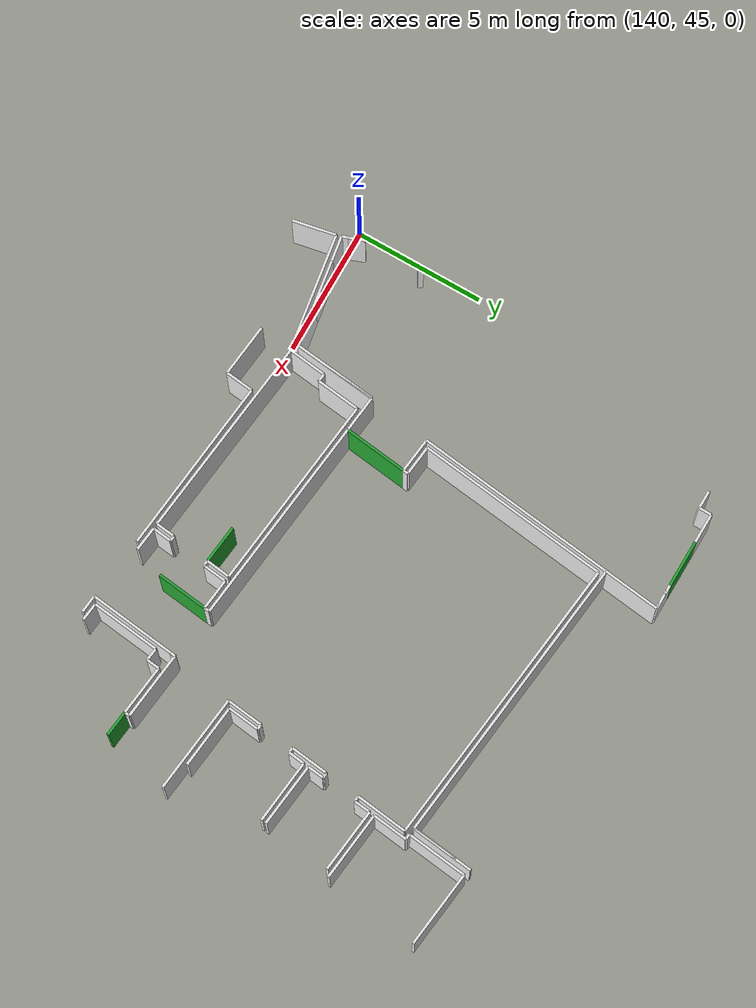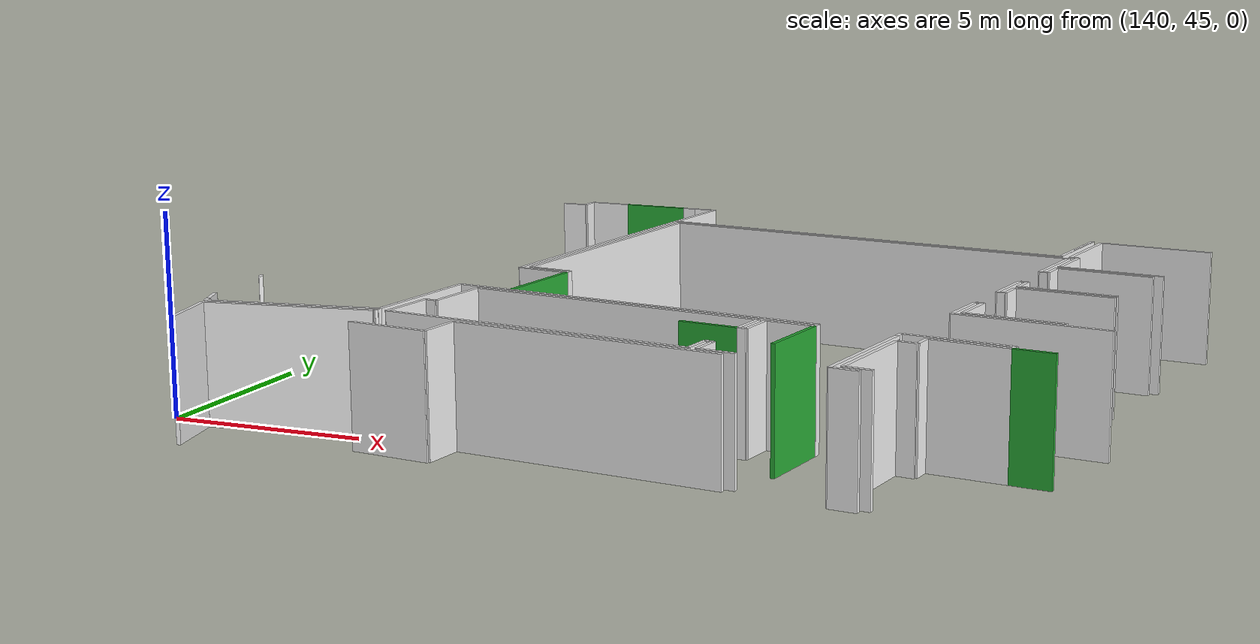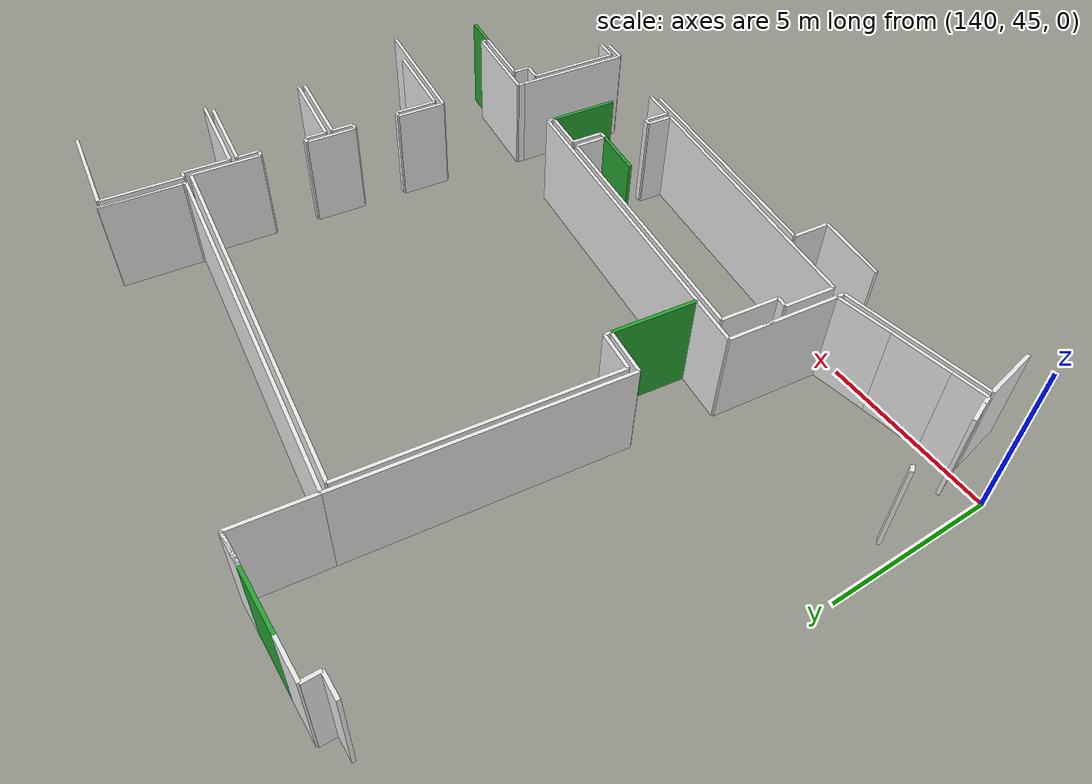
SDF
<sdf version="1.6">
 <world name="default">
  <model name="wall_153.0_46.8_1.5">
   <static>true</static>
   <pose>153.0100000000093 46.76000000000931 1.5 0 0 3.020565433667462</pose>
   <link name="link">
    <visual name="visual">
     <geometry><box><size>1.49090576496478 0.1 3</size></box></geometry>
     <material>
      <script><uri>file://media/materials/scripts/gazebo.material</uri><name>Gazebo/Green</name></script>
     </material>
    </visual>
    <collision name="collision"><geometry><box><size>1.49090576496478 0.1 3</size></box></geometry></collision>
   </link>
  </model>
  <model name="wall_147.3_49.9_1.5">
   <static>true</static>
   <pose>147.29000000000815 49.85000000009313 1.5 0 0 1.4494443262269763</pose>
   <link name="link">
    <visual name="visual">
     <geometry><box><size>2.478225171329218 0.1 3</size></box></geometry>
     <material>
      <script><uri>file://media/materials/scripts/gazebo.material</uri><name>Gazebo/Green</name></script>
     </material>
    </visual>
    <collision name="collision"><geometry><box><size>2.478225171329218 0.1 3</size></box></geometry></collision>
   </link>
  </model>
  <model name="wall_155.1_46.4_1.5">
   <static>true</static>
   <pose>155.14000000013039 46.44500000006519 1.5 0 0 -1.6908196651600471</pose>
   <link name="link">
    <visual name="visual">
     <geometry><box><size>2.0044201153750274 0.1 3</size></box></geometry>
     <material>
      <script><uri>file://media/materials/scripts/gazebo.material</uri><name>Gazebo/Green</name></script>
     </material>
    </visual>
    <collision name="collision"><geometry><box><size>2.0044201153750274 0.1 3</size></box></geometry></collision>
   </link>
  </model>
  <model name="wall_160.4_46.8_1.5">
   <static>true</static>
   <pose>160.3850000000093 46.81999999983236 1.5 0 0 -0.1206236686924795</pose>
   <link name="link">
    <visual name="visual">
     <geometry><box><size>0.9972462083198822 0.1 3</size></box></geometry>
     <material>
      <script><uri>file://media/materials/scripts/gazebo.material</uri><name>Gazebo/Green</name></script>
     </material>
    </visual>
    <collision name="collision"><geometry><box><size>0.9972462083198822 0.1 3</size></box></geometry></collision>
   </link>
  </model>
  <model name="wall_145.4_61.4_1.5">
   <static>true</static>
   <pose>145.44999999998254 61.360000000102445 1.5 0 0 -0.011110653908026076</pose>
   <link name="link">
    <visual name="visual">
     <geometry><box><size>1.8001111076705336 0.1 3</size></box></geometry>
     <material>
      <script><uri>file://media/materials/scripts/gazebo.material</uri><name>Gazebo/Green</name></script>
     </material>
    </visual>
    <collision name="collision"><geometry><box><size>1.8001111076705336 0.1 3</size></box></geometry></collision>
   </link>
  </model>
  <model name="wall_153.8_47.1_1.5">
   <static>true</static>
   <pose>153.80499999999302 47.139999999897555 1.5 0 0 -1.6872877874817485</pose>
   <link name="link">
    <visual name="visual">
     <geometry><box><size>0.9464142855493431 0.1 3</size></box></geometry>
     <material>
      <script><uri>file://media/materials/scripts/gazebo.material</uri><name>Gazebo/White</name></script>
     </material>
    </visual>
    <collision name="collision"><geometry><box><size>0.9464142855493431 0.1 3</size></box></geometry></collision>
   </link>
  </model>
  <model name="wall_153.5_44.8_1.5">
   <static>true</static>
   <pose>153.52499999999418 44.81499999994412 1.5 0 0 -1.6902252528468988</pose>
   <link name="link">
    <visual name="visual">
     <geometry><box><size>0.7553806987239018 0.1 3</size></box></geometry>
     <material>
      <script><uri>file://media/materials/scripts/gazebo.material</uri><name>Gazebo/White</name></script>
     </material>
    </visual>
    <collision name="collision"><geometry><box><size>0.7553806987239018 0.1 3</size></box></geometry></collision>
   </link>
  </model>
  <model name="wall_149.6_44.9_1.5">
   <static>true</static>
   <pose>149.55499999999302 44.91500000003725 1.5 0 0 3.0211592075440525</pose>
   <link name="link">
    <visual name="visual">
     <geometry><box><size>7.907275131168029 0.1 3</size></box></geometry>
     <material>
      <script><uri>file://media/materials/scripts/gazebo.material</uri><name>Gazebo/White</name></script>
     </material>
    </visual>
    <collision name="collision"><geometry><box><size>7.907275131168029 0.1 3</size></box></geometry></collision>
   </link>
  </model>
  <model name="wall_145.7_46.1_1.5">
   <static>true</static>
   <pose>145.72000000000116 46.13000000012107 1.5 0 0 1.449769106988834</pose>
   <link name="link">
    <visual name="visual">
     <geometry><box><size>1.4909057649436974 0.1 3</size></box></geometry>
     <material>
      <script><uri>file://media/materials/scripts/gazebo.material</uri><name>Gazebo/White</name></script>
     </material>
    </visual>
    <collision name="collision"><geometry><box><size>1.4909057649436974 0.1 3</size></box></geometry></collision>
   </link>
  </model>
  <model name="wall_146.0_46.9_1.5">
   <static>true</static>
   <pose>145.95999999999185 46.85000000009313 1.5 0 0 -0.132551532423765</pose>
   <link name="link">
    <visual name="visual">
     <geometry><box><size>0.3026549190018152 0.1 3</size></box></geometry>
     <material>
      <script><uri>file://media/materials/scripts/gazebo.material</uri><name>Gazebo/White</name></script>
     </material>
    </visual>
    <collision name="collision"><geometry><box><size>0.3026549190018152 0.1 3</size></box></geometry></collision>
   </link>
  </model>
  <model name="wall_146.2_47.7_1.5">
   <static>true</static>
   <pose>146.20999999999185 47.675000000046566 1.5 0 0 1.4530010049136584</pose>
   <link name="link">
    <visual name="visual">
     <geometry><box><size>1.7017931718677757 0.1 3</size></box></geometry>
     <material>
      <script><uri>file://media/materials/scripts/gazebo.material</uri><name>Gazebo/White</name></script>
     </material>
    </visual>
    <collision name="collision"><geometry><box><size>1.7017931718677757 0.1 3</size></box></geometry></collision>
   </link>
  </model>
  <model name="wall_150.1_48.1_1.5">
   <static>true</static>
   <pose>150.08499999999185 48.06499999994412 1.5 0 0 -0.11995117374483057</pose>
   <link name="link">
    <visual name="visual">
     <geometry><box><size>7.604643318400634 0.1 3</size></box></geometry>
     <material>
      <script><uri>file://media/materials/scripts/gazebo.material</uri><name>Gazebo/White</name></script>
     </material>
    </visual>
    <collision name="collision"><geometry><box><size>7.604643318400634 0.1 3</size></box></geometry></collision>
   </link>
  </model>
  <model name="wall_159.9_47.0_1.5">
   <static>true</static>
   <pose>159.89999999999418 46.97999999998137 1.5 0 0 1.4711276745918913</pose>
   <link name="link">
    <visual name="visual">
     <geometry><box><size>0.20099751260381943 0.1 3</size></box></geometry>
     <material>
      <script><uri>file://media/materials/scripts/gazebo.material</uri><name>Gazebo/White</name></script>
     </material>
    </visual>
    <collision name="collision"><geometry><box><size>0.20099751260381943 0.1 3</size></box></geometry></collision>
   </link>
  </model>
  <model name="wall_158.6_47.2_1.5">
   <static>true</static>
   <pose>158.5899999999965 47.23999999999069 1.5 0 0 3.020968985070269</pose>
   <link name="link">
    <visual name="visual">
     <geometry><box><size>2.659323222111057 0.1 3</size></box></geometry>
     <material>
      <script><uri>file://media/materials/scripts/gazebo.material</uri><name>Gazebo/White</name></script>
     </material>
    </visual>
    <collision name="collision"><geometry><box><size>2.659323222111057 0.1 3</size></box></geometry></collision>
   </link>
  </model>
  <model name="wall_157.3_47.3_1.5">
   <static>true</static>
   <pose>157.2600000000093 47.300000000046566 1.5 0 0 -1.670464979516584</pose>
   <link name="link">
    <visual name="visual">
     <geometry><box><size>0.20099751214626105 0.1 3</size></box></geometry>
     <material>
      <script><uri>file://media/materials/scripts/gazebo.material</uri><name>Gazebo/White</name></script>
     </material>
    </visual>
    <collision name="collision"><geometry><box><size>0.20099751214626105 0.1 3</size></box></geometry></collision>
   </link>
  </model>
  <model name="wall_155.3_47.5_1.5">
   <static>true</static>
   <pose>155.27000000001863 47.54000000003725 1.5 0 0 1.4711276743037347</pose>
   <link name="link">
    <visual name="visual">
     <geometry><box><size>0.20099751260961132 0.1 3</size></box></geometry>
     <material>
      <script><uri>file://media/materials/scripts/gazebo.material</uri><name>Gazebo/White</name></script>
     </material>
    </visual>
    <collision name="collision"><geometry><box><size>0.20099751260961132 0.1 3</size></box></geometry></collision>
   </link>
  </model>
  <model name="wall_151.2_48.1_1.5">
   <static>true</static>
   <pose>151.21000000002095 48.13000000012107 1.5 0 0 3.021776205795211</pose>
   <link name="link">
    <visual name="visual">
     <geometry><box><size>8.198780397119496 0.1 3</size></box></geometry>
     <material>
      <script><uri>file://media/materials/scripts/gazebo.material</uri><name>Gazebo/White</name></script>
     </material>
    </visual>
    <collision name="collision"><geometry><box><size>8.198780397119496 0.1 3</size></box></geometry></collision>
   </link>
  </model>
  <model name="wall_147.5_51.2_1.5">
   <static>true</static>
   <pose>147.45000000001164 51.175000000046566 1.5 0 0 1.4659193879370842</pose>
   <link name="link">
    <visual name="visual">
     <geometry><box><size>0.19104973169180559 0.1 3</size></box></geometry>
     <material>
      <script><uri>file://media/materials/scripts/gazebo.material</uri><name>Gazebo/White</name></script>
     </material>
    </visual>
    <collision name="collision"><geometry><box><size>0.19104973169180559 0.1 3</size></box></geometry></collision>
   </link>
  </model>
  <model name="wall_146.9_51.3_1.5">
   <static>true</static>
   <pose>146.88000000000466 51.34000000008382 1.5 0 0 3.0214839179154356</pose>
   <link name="link">
    <visual name="visual">
     <geometry><box><size>1.1684177335662667 0.1 3</size></box></geometry>
     <material>
      <script><uri>file://media/materials/scripts/gazebo.material</uri><name>Gazebo/White</name></script>
     </material>
    </visual>
    <collision name="collision"><geometry><box><size>1.1684177335662667 0.1 3</size></box></geometry></collision>
   </link>
  </model>
  <model name="wall_146.8_55.2_1.5">
   <static>true</static>
   <pose>146.75500000000466 55.16500000003725 1.5 0 0 1.4502124243818328</pose>
   <link name="link">
    <visual name="visual">
     <geometry><box><size>7.564932253279079 0.1 3</size></box></geometry>
     <material>
      <script><uri>file://media/materials/scripts/gazebo.material</uri><name>Gazebo/White</name></script>
     </material>
    </visual>
    <collision name="collision"><geometry><box><size>7.564932253279079 0.1 3</size></box></geometry></collision>
   </link>
  </model>
  <model name="wall_152.9_58.2_1.5">
   <static>true</static>
   <pose>152.92500000001746 58.22999999998137 1.5 0 0 -0.12015333859032509</pose>
   <link name="link">
    <visual name="visual">
     <geometry><box><size>11.513005689199145 0.1 3</size></box></geometry>
     <material>
      <script><uri>file://media/materials/scripts/gazebo.material</uri><name>Gazebo/White</name></script>
     </material>
    </visual>
    <collision name="collision"><geometry><box><size>11.513005689199145 0.1 3</size></box></geometry></collision>
   </link>
  </model>
  <model name="wall_158.5_56.5_1.5">
   <static>true</static>
   <pose>158.51500000001397 56.53000000002794 1.5 0 0 -1.6939325529007196</pose>
   <link name="link">
    <visual name="visual">
     <geometry><box><size>2.0354115063237828 0.1 3</size></box></geometry>
     <material>
      <script><uri>file://media/materials/scripts/gazebo.material</uri><name>Gazebo/White</name></script>
     </material>
    </visual>
    <collision name="collision"><geometry><box><size>2.0354115063237828 0.1 3</size></box></geometry></collision>
   </link>
  </model>
  <model name="wall_158.5_55.5_1.5">
   <static>true</static>
   <pose>158.49499999999534 55.50500000012107 1.5 0 0 -0.14189705367284136</pose>
   <link name="link">
    <visual name="visual">
     <geometry><box><size>0.2121320342901098 0.1 3</size></box></geometry>
     <material>
      <script><uri>file://media/materials/scripts/gazebo.material</uri><name>Gazebo/White</name></script>
     </material>
    </visual>
    <collision name="collision"><geometry><box><size>0.2121320342901098 0.1 3</size></box></geometry></collision>
   </link>
  </model>
  <model name="wall_158.3_54.1_1.5">
   <static>true</static>
   <pose>158.3299999999872 54.11999999987893 1.5 0 0 3.0419240010121844</pose>
   <link name="link">
    <visual name="visual">
     <geometry><box><size>0.20099751243585498 0.1 3</size></box></geometry>
     <material>
      <script><uri>file://media/materials/scripts/gazebo.material</uri><name>Gazebo/White</name></script>
     </material>
    </visual>
    <collision name="collision"><geometry><box><size>0.20099751243585498 0.1 3</size></box></geometry></collision>
   </link>
  </model>
  <model name="wall_158.1_53.4_1.5">
   <static>true</static>
   <pose>158.13999999998487 53.389999999897555 1.5 0 0 -1.6918235466009592</pose>
   <link name="link">
    <visual name="visual">
     <geometry><box><size>1.4909057649436974 0.1 3</size></box></geometry>
     <material>
      <script><uri>file://media/materials/scripts/gazebo.material</uri><name>Gazebo/White</name></script>
     </material>
    </visual>
    <collision name="collision"><geometry><box><size>1.4909057649436974 0.1 3</size></box></geometry></collision>
   </link>
  </model>
  <model name="wall_158.1_52.6_1.5">
   <static>true</static>
   <pose>158.14999999999418 52.639999999897555 1.5 0 0 -0.09966865257760905</pose>
   <link name="link">
    <visual name="visual">
     <geometry><box><size>0.20099751243585498 0.1 3</size></box></geometry>
     <material>
      <script><uri>file://media/materials/scripts/gazebo.material</uri><name>Gazebo/White</name></script>
     </material>
    </visual>
    <collision name="collision"><geometry><box><size>0.20099751243585498 0.1 3</size></box></geometry></collision>
   </link>
  </model>
  <model name="wall_158.0_51.3_1.5">
   <static>true</static>
   <pose>157.98500000001513 51.26000000000931 1.5 0 0 3.0367157147638757</pose>
   <link name="link">
    <visual name="visual">
     <geometry><box><size>0.19104973174969345 0.1 3</size></box></geometry>
     <material>
      <script><uri>file://media/materials/scripts/gazebo.material</uri><name>Gazebo/White</name></script>
     </material>
    </visual>
    <collision name="collision"><geometry><box><size>0.19104973174969345 0.1 3</size></box></geometry></collision>
   </link>
  </model>
  <model name="wall_157.8_50.6_1.5">
   <static>true</static>
   <pose>157.80000000001746 50.55499999993481 1.5 0 0 -1.6960119063078065</pose>
   <link name="link">
    <visual name="visual">
     <geometry><box><size>1.4412841498042397 0.1 3</size></box></geometry>
     <material>
      <script><uri>file://media/materials/scripts/gazebo.material</uri><name>Gazebo/White</name></script>
     </material>
    </visual>
    <collision name="collision"><geometry><box><size>1.4412841498042397 0.1 3</size></box></geometry></collision>
   </link>
  </model>
  <model name="wall_159.6_49.6_1.5">
   <static>true</static>
   <pose>159.62000000002445 49.609999999869615 1.5 0 0 -0.11984180790081929</pose>
   <link name="link">
    <visual name="visual">
     <geometry><box><size>3.8475966524597003 0.1 3</size></box></geometry>
     <material>
      <script><uri>file://media/materials/scripts/gazebo.material</uri><name>Gazebo/White</name></script>
     </material>
    </visual>
    <collision name="collision"><geometry><box><size>3.8475966524597003 0.1 3</size></box></geometry></collision>
   </link>
  </model>
  <model name="wall_158.0_50.6_1.5">
   <static>true</static>
   <pose>158.00500000000466 50.62999999988824 1.5 0 0 -1.6911791475924711</pose>
   <link name="link">
    <visual name="visual">
     <geometry><box><size>1.2490396313013081 0.1 3</size></box></geometry>
     <material>
      <script><uri>file://media/materials/scripts/gazebo.material</uri><name>Gazebo/White</name></script>
     </material>
    </visual>
    <collision name="collision"><geometry><box><size>1.2490396313013081 0.1 3</size></box></geometry></collision>
   </link>
  </model>
  <model name="wall_159.2_49.9_1.5">
   <static>true</static>
   <pose>159.1699999999837 49.86499999999069 1.5 0 0 -0.11640682593514659</pose>
   <link name="link">
    <visual name="visual">
     <geometry><box><size>2.4968980755447623 0.1 3</size></box></geometry>
     <material>
      <script><uri>file://media/materials/scripts/gazebo.material</uri><name>Gazebo/White</name></script>
     </material>
    </visual>
    <collision name="collision"><geometry><box><size>2.4968980755447623 0.1 3</size></box></geometry></collision>
   </link>
  </model>
  <model name="wall_159.6_53.1_1.5">
   <static>true</static>
   <pose>159.57000000000698 53.125 1.5 0 0 3.025185827469413</pose>
   <link name="link">
    <visual name="visual">
     <geometry><box><size>2.4968980755988457 0.1 3</size></box></geometry>
     <material>
      <script><uri>file://media/materials/scripts/gazebo.material</uri><name>Gazebo/White</name></script>
     </material>
    </visual>
    <collision name="collision"><geometry><box><size>2.4968980755988457 0.1 3</size></box></geometry></collision>
   </link>
  </model>
  <model name="wall_158.3_52.9_1.5">
   <static>true</static>
   <pose>158.29000000000815 52.949999999953434 1.5 0 0 -1.695151321341658</pose>
   <link name="link">
    <visual name="visual">
     <geometry><box><size>0.6449806199952839 0.1 3</size></box></geometry>
     <material>
      <script><uri>file://media/materials/scripts/gazebo.material</uri><name>Gazebo/White</name></script>
     </material>
    </visual>
    <collision name="collision"><geometry><box><size>0.6449806199952839 0.1 3</size></box></geometry></collision>
   </link>
  </model>
  <model name="wall_158.8_57.0_1.5">
   <static>true</static>
   <pose>158.7850000000035 57.03000000002794 1.5 0 0 1.4482254517181363</pose>
   <link name="link">
    <visual name="visual">
     <geometry><box><size>1.390431588022665 0.1 3</size></box></geometry>
     <material>
      <script><uri>file://media/materials/scripts/gazebo.material</uri><name>Gazebo/White</name></script>
     </material>
    </visual>
    <collision name="collision"><geometry><box><size>1.390431588022665 0.1 3</size></box></geometry></collision>
   </link>
  </model>
  <model name="wall_158.8_57.7_1.5">
   <static>true</static>
   <pose>158.76499999998487 57.730000000214204 1.5 0 0 3.0466409471685547</pose>
   <link name="link">
    <visual name="visual">
     <geometry><box><size>0.21095023111991618 0.1 3</size></box></geometry>
     <material>
      <script><uri>file://media/materials/scripts/gazebo.material</uri><name>Gazebo/White</name></script>
     </material>
    </visual>
    <collision name="collision"><geometry><box><size>0.21095023111991618 0.1 3</size></box></geometry></collision>
   </link>
  </model>
  <model name="wall_158.8_58.9_1.5">
   <static>true</static>
   <pose>158.80499999999302 58.93000000016764 1.5 0 0 1.4495453057038894</pose>
   <link name="link">
    <visual name="visual">
     <geometry><box><size>2.3976029695280316 0.1 3</size></box></geometry>
     <material>
      <script><uri>file://media/materials/scripts/gazebo.material</uri><name>Gazebo/White</name></script>
     </material>
    </visual>
    <collision name="collision"><geometry><box><size>2.3976029695280316 0.1 3</size></box></geometry></collision>
   </link>
  </model>
  <model name="wall_160.4_59.9_1.5">
   <static>true</static>
   <pose>160.44000000000233 59.93999999994412 1.5 0 0 -0.12022278677294355</pose>
   <link name="link">
    <visual name="visual">
     <geometry><box><size>3.0016662039824453 0.1 3</size></box></geometry>
     <material>
      <script><uri>file://media/materials/scripts/gazebo.material</uri><name>Gazebo/White</name></script>
     </material>
    </visual>
    <collision name="collision"><geometry><box><size>3.0016662039824453 0.1 3</size></box></geometry></collision>
   </link>
  </model>
  <model name="wall_160.0_56.2_1.5">
   <static>true</static>
   <pose>160.04000000000815 56.17999999993481 1.5 0 0 3.0227523090833937</pose>
   <link name="link">
    <visual name="visual">
     <geometry><box><size>2.6990368652271632 0.1 3</size></box></geometry>
     <material>
      <script><uri>file://media/materials/scripts/gazebo.material</uri><name>Gazebo/White</name></script>
     </material>
    </visual>
    <collision name="collision"><geometry><box><size>2.6990368652271632 0.1 3</size></box></geometry></collision>
   </link>
  </model>
  <model name="wall_157.4_44.0_1.5">
   <static>true</static>
   <pose>157.41500000000815 43.96499999985099 1.5 0 0 3.01189011664666</pose>
   <link name="link">
    <visual name="visual">
     <geometry><box><size>0.6958448102676278 0.1 3</size></box></geometry>
     <material>
      <script><uri>file://media/materials/scripts/gazebo.material</uri><name>Gazebo/White</name></script>
     </material>
    </visual>
    <collision name="collision"><geometry><box><size>0.6958448102676278 0.1 3</size></box></geometry></collision>
   </link>
  </model>
  <model name="wall_157.2_45.3_1.5">
   <static>true</static>
   <pose>157.23000000001048 45.34499999997206 1.5 0 0 1.4515150894624935</pose>
   <link name="link">
    <visual name="visual">
     <geometry><box><size>2.6891076590745193 0.1 3</size></box></geometry>
     <material>
      <script><uri>file://media/materials/scripts/gazebo.material</uri><name>Gazebo/White</name></script>
     </material>
    </visual>
    <collision name="collision"><geometry><box><size>2.6891076590745193 0.1 3</size></box></geometry></collision>
   </link>
  </model>
  <model name="wall_157.6_46.7_1.5">
   <static>true</static>
   <pose>157.6350000000093 46.6500000001397 1.5 0 0 -0.12184243713456504</pose>
   <link name="link">
    <visual name="visual">
     <geometry><box><size>0.4936598018854468 0.1 3</size></box></geometry>
     <material>
      <script><uri>file://media/materials/scripts/gazebo.material</uri><name>Gazebo/White</name></script>
     </material>
    </visual>
    <collision name="collision"><geometry><box><size>0.4936598018854468 0.1 3</size></box></geometry></collision>
   </link>
  </model>
  <model name="wall_157.9_46.9_1.5">
   <static>true</static>
   <pose>157.9100000000035 46.87000000011176 1.5 0 0 1.4513674007811488</pose>
   <link name="link">
    <visual name="visual">
     <geometry><box><size>0.5035871324802894 0.1 3</size></box></geometry>
     <material>
      <script><uri>file://media/materials/scripts/gazebo.material</uri><name>Gazebo/White</name></script>
     </material>
    </visual>
    <collision name="collision"><geometry><box><size>0.5035871324802894 0.1 3</size></box></geometry></collision>
   </link>
  </model>
  <model name="wall_158.9_47.0_1.5">
   <static>true</static>
   <pose>158.91500000000815 47.0 1.5 0 0 -0.12246105752953153</pose>
   <link name="link">
    <visual name="visual">
     <geometry><box><size>1.964713719642811 0.1 3</size></box></geometry>
     <material>
      <script><uri>file://media/materials/scripts/gazebo.material</uri><name>Gazebo/White</name></script>
     </material>
    </visual>
    <collision name="collision"><geometry><box><size>1.964713719642811 0.1 3</size></box></geometry></collision>
   </link>
  </model>
  <model name="wall_159.9_56.0_1.5">
   <static>true</static>
   <pose>159.91499999997905 55.98999999999069 1.5 0 0 3.021688668113723</pose>
   <link name="link">
    <visual name="visual">
     <geometry><box><size>2.508007177047398 0.1 3</size></box></geometry>
     <material>
      <script><uri>file://media/materials/scripts/gazebo.material</uri><name>Gazebo/White</name></script>
     </material>
    </visual>
    <collision name="collision"><geometry><box><size>2.508007177047398 0.1 3</size></box></geometry></collision>
   </link>
  </model>
  <model name="wall_158.6_55.8_1.5">
   <static>true</static>
   <pose>158.6349999999802 55.81500000017695 1.5 0 0 -1.6780751824691755</pose>
   <link name="link">
    <visual name="visual">
     <geometry><box><size>0.6537583650553972 0.1 3</size></box></geometry>
     <material>
      <script><uri>file://media/materials/scripts/gazebo.material</uri><name>Gazebo/White</name></script>
     </material>
    </visual>
    <collision name="collision"><geometry><box><size>0.6537583650553972 0.1 3</size></box></geometry></collision>
   </link>
  </model>
  <model name="wall_158.4_53.8_1.5">
   <static>true</static>
   <pose>158.38999999998487 53.79000000003725 1.5 0 0 -1.6951513214312084</pose>
   <link name="link">
    <visual name="visual">
     <geometry><box><size>0.6449806195332185 0.1 3</size></box></geometry>
     <material>
      <script><uri>file://media/materials/scripts/gazebo.material</uri><name>Gazebo/White</name></script>
     </material>
    </visual>
    <collision name="collision"><geometry><box><size>0.6449806195332185 0.1 3</size></box></geometry></collision>
   </link>
  </model>
  <model name="wall_159.6_53.3_1.5">
   <static>true</static>
   <pose>159.5899999999965 53.32000000006519 1.5 0 0 -0.12038282090969171</pose>
   <link name="link">
    <visual name="visual">
     <geometry><box><size>2.498079262226073 0.1 3</size></box></geometry>
     <material>
      <script><uri>file://media/materials/scripts/gazebo.material</uri><name>Gazebo/White</name></script>
     </material>
    </visual>
    <collision name="collision"><geometry><box><size>2.498079262226073 0.1 3</size></box></geometry></collision>
   </link>
  </model>
  <model name="wall_154.1_44.4_1.5">
   <static>true</static>
   <pose>154.14999999999418 44.359999999869615 1.5 0 0 3.0146198638590396</pose>
   <link name="link">
    <visual name="visual">
     <geometry><box><size>0.9476286192550325 0.1 3</size></box></geometry>
     <material>
      <script><uri>file://media/materials/scripts/gazebo.material</uri><name>Gazebo/White</name></script>
     </material>
    </visual>
    <collision name="collision"><geometry><box><size>0.9476286192550325 0.1 3</size></box></geometry></collision>
   </link>
  </model>
  <model name="wall_153.7_44.8_1.5">
   <static>true</static>
   <pose>153.72500000000582 44.79000000003725 1.5 0 0 1.4497691069877865</pose>
   <link name="link">
    <visual name="visual">
     <geometry><box><size>0.74545288270649 0.1 3</size></box></geometry>
     <material>
      <script><uri>file://media/materials/scripts/gazebo.material</uri><name>Gazebo/White</name></script>
     </material>
    </visual>
    <collision name="collision"><geometry><box><size>0.74545288270649 0.1 3</size></box></geometry></collision>
   </link>
  </model>
  <model name="wall_153.7_45.2_1.5">
   <static>true</static>
   <pose>153.6700000000128 45.175000000046566 1.5 0 0 2.992702706990747</pose>
   <link name="link">
    <visual name="visual">
     <geometry><box><size>0.20223748414268597 0.1 3</size></box></geometry>
     <material>
      <script><uri>file://media/materials/scripts/gazebo.material</uri><name>Gazebo/White</name></script>
     </material>
    </visual>
    <collision name="collision"><geometry><box><size>0.20223748414268597 0.1 3</size></box></geometry></collision>
   </link>
  </model>
  <model name="wall_153.9_46.7_1.5">
   <static>true</static>
   <pose>153.85000000000582 46.65999999991618 1.5 0 0 -0.09966865257760905</pose>
   <link name="link">
    <visual name="visual">
     <geometry><box><size>0.20099751243585498 0.1 3</size></box></geometry>
     <material>
      <script><uri>file://media/materials/scripts/gazebo.material</uri><name>Gazebo/White</name></script>
     </material>
    </visual>
    <collision name="collision"><geometry><box><size>0.20099751243585498 0.1 3</size></box></geometry></collision>
   </link>
  </model>
  <model name="wall_154.0_47.1_1.5">
   <static>true</static>
   <pose>154.00500000000466 47.11499999999069 1.5 0 0 1.4530637520266436</pose>
   <link name="link">
    <visual name="visual">
     <geometry><box><size>0.9364827816402892 0.1 3</size></box></geometry>
     <material>
      <script><uri>file://media/materials/scripts/gazebo.material</uri><name>Gazebo/White</name></script>
     </material>
    </visual>
    <collision name="collision"><geometry><box><size>0.9364827816402892 0.1 3</size></box></geometry></collision>
   </link>
  </model>
  <model name="wall_154.7_47.5_1.5">
   <static>true</static>
   <pose>154.6600000000035 47.51000000000931 1.5 0 0 -0.11614162698606886</pose>
   <link name="link">
    <visual name="visual">
     <geometry><box><size>1.2081390648697887 0.1 3</size></box></geometry>
     <material>
      <script><uri>file://media/materials/scripts/gazebo.material</uri><name>Gazebo/White</name></script>
     </material>
    </visual>
    <collision name="collision"><geometry><box><size>1.2081390648697887 0.1 3</size></box></geometry></collision>
   </link>
  </model>
  <model name="wall_157.0_45.5_1.5">
   <static>true</static>
   <pose>157.0450000000128 45.515000000130385 1.5 0 0 -1.6918630613513788</pose>
   <link name="link">
    <visual name="visual">
     <geometry><box><size>3.3948490394614383 0.1 3</size></box></geometry>
     <material>
      <script><uri>file://media/materials/scripts/gazebo.material</uri><name>Gazebo/White</name></script>
     </material>
    </visual>
    <collision name="collision"><geometry><box><size>3.3948490394614383 0.1 3</size></box></geometry></collision>
   </link>
  </model>
  <model name="wall_157.2_43.8_1.5">
   <static>true</static>
   <pose>157.18500000002678 43.79000000003725 1.5 0 0 -0.11542666047308585</pose>
   <link name="link">
    <visual name="visual">
     <geometry><box><size>0.6946221994833839 0.1 3</size></box></geometry>
     <material>
      <script><uri>file://media/materials/scripts/gazebo.material</uri><name>Gazebo/White</name></script>
     </material>
    </visual>
    <collision name="collision"><geometry><box><size>0.6946221994833839 0.1 3</size></box></geometry></collision>
   </link>
  </model>
  <model name="wall_146.5_43.9_1.5">
   <static>true</static>
   <pose>146.45999999999185 43.949999999953434 1.5 0 0 -0.11710874445097873</pose>
   <link name="link">
    <visual name="visual">
     <geometry><box><size>2.0540691321857394 0.1 3</size></box></geometry>
     <material>
      <script><uri>file://media/materials/scripts/gazebo.material</uri><name>Gazebo/White</name></script>
     </material>
    </visual>
    <collision name="collision"><geometry><box><size>2.0540691321857394 0.1 3</size></box></geometry></collision>
   </link>
  </model>
  <model name="wall_147.5_44.4_1.5">
   <static>true</static>
   <pose>147.53999999997905 44.37000000011176 1.5 0 0 1.460139105632832</pose>
   <link name="link">
    <visual name="visual">
     <geometry><box><size>1.086646216650026 0.1 3</size></box></geometry>
     <material>
      <script><uri>file://media/materials/scripts/gazebo.material</uri><name>Gazebo/White</name></script>
     </material>
    </visual>
    <collision name="collision"><geometry><box><size>1.086646216650026 0.1 3</size></box></geometry></collision>
   </link>
  </model>
  <model name="wall_151.0_44.5_1.5">
   <static>true</static>
   <pose>150.9899999999907 44.5250000001397 1.5 0 0 -0.11308479368536209</pose>
   <link name="link">
    <visual name="visual">
     <geometry><box><size>6.8235841022447685 0.1 3</size></box></geometry>
     <material>
      <script><uri>file://media/materials/scripts/gazebo.material</uri><name>Gazebo/White</name></script>
     </material>
    </visual>
    <collision name="collision"><geometry><box><size>6.8235841022447685 0.1 3</size></box></geometry></collision>
   </link>
  </model>
  <model name="wall_146.5_61.3_1.5">
   <static>true</static>
   <pose>146.5349999999744 61.34499999997206 1.5 0 0 -0.02702044984156988</pose>
   <link name="link">
    <visual name="visual">
     <geometry><box><size>0.37013511046832204 0.1 3</size></box></geometry>
     <material>
      <script><uri>file://media/materials/scripts/gazebo.material</uri><name>Gazebo/White</name></script>
     </material>
    </visual>
    <collision name="collision"><geometry><box><size>0.37013511046832204 0.1 3</size></box></geometry></collision>
   </link>
  </model>
  <model name="wall_147.0_61.3_1.5">
   <static>true</static>
   <pose>147.01499999998487 61.34499999997206 1.5 0 0 0.016947530215964846</pose>
   <link name="link">
    <visual name="visual">
     <geometry><box><size>0.5900847397069884 0.1 3</size></box></geometry>
     <material>
      <script><uri>file://media/materials/scripts/gazebo.material</uri><name>Gazebo/White</name></script>
     </material>
    </visual>
    <collision name="collision"><geometry><box><size>0.5900847397069884 0.1 3</size></box></geometry></collision>
   </link>
  </model>
  <model name="wall_147.2_60.2_1.5">
   <static>true</static>
   <pose>147.17499999998836 60.24500000011176 1.5 0 0 -1.6923658132359836</pose>
   <link name="link">
    <visual name="visual">
     <geometry><box><size>2.226432123341154 0.1 3</size></box></geometry>
     <material>
      <script><uri>file://media/materials/scripts/gazebo.material</uri><name>Gazebo/White</name></script>
     </material>
    </visual>
    <collision name="collision"><geometry><box><size>2.226432123341154 0.1 3</size></box></geometry></collision>
   </link>
  </model>
  <model name="wall_146.6_55.2_1.5">
   <static>true</static>
   <pose>146.55999999999767 55.19500000006519 1.5 0 0 -1.6918741795088168</pose>
   <link name="link">
    <visual name="visual">
     <geometry><box><size>7.9481884729783525 0.1 3</size></box></geometry>
     <material>
      <script><uri>file://media/materials/scripts/gazebo.material</uri><name>Gazebo/White</name></script>
     </material>
    </visual>
    <collision name="collision"><geometry><box><size>7.9481884729783525 0.1 3</size></box></geometry></collision>
   </link>
  </model>
  <model name="wall_146.8_51.2_1.5">
   <static>true</static>
   <pose>146.7600000000093 51.16500000003725 1.5 0 0 -0.12435499449408483</pose>
   <link name="link">
    <visual name="visual">
     <geometry><box><size>1.37058381718765 0.1 3</size></box></geometry>
     <material>
      <script><uri>file://media/materials/scripts/gazebo.material</uri><name>Gazebo/White</name></script>
     </material>
    </visual>
    <collision name="collision"><geometry><box><size>1.37058381718765 0.1 3</size></box></geometry></collision>
   </link>
  </model>
  <model name="wall_146.4_48.7_1.5">
   <static>true</static>
   <pose>146.42500000001746 48.705000000074506 1.5 0 0 3.0232668711350636</pose>
   <link name="link">
    <visual name="visual">
     <geometry><box><size>1.440069442754304 0.1 3</size></box></geometry>
     <material>
      <script><uri>file://media/materials/scripts/gazebo.material</uri><name>Gazebo/White</name></script>
     </material>
    </visual>
    <collision name="collision"><geometry><box><size>1.440069442754304 0.1 3</size></box></geometry></collision>
   </link>
  </model>
  <model name="wall_145.5_47.2_1.5">
   <static>true</static>
   <pose>145.52999999999884 47.169999999925494 1.5 0 0 -1.6814535479747077</pose>
   <link name="link">
    <visual name="visual">
     <geometry><box><size>3.259938649956506 0.1 3</size></box></geometry>
     <material>
      <script><uri>file://media/materials/scripts/gazebo.material</uri><name>Gazebo/White</name></script>
     </material>
    </visual>
    <collision name="collision"><geometry><box><size>3.259938649956506 0.1 3</size></box></geometry></collision>
   </link>
  </model>
  <model name="wall_144.5_45.4_1.5">
   <static>true</static>
   <pose>144.53999999997905 45.41499999980442 1.5 0 0 -2.9764439761635133</pose>
   <link name="link">
    <visual name="visual">
     <geometry><box><size>1.6423458831789883 0.1 3</size></box></geometry>
     <material>
      <script><uri>file://media/materials/scripts/gazebo.material</uri><name>Gazebo/White</name></script>
     </material>
    </visual>
    <collision name="collision"><geometry><box><size>1.6423458831789883 0.1 3</size></box></geometry></collision>
   </link>
  </model>
  <model name="wall_142.9_45.1_1.5">
   <static>true</static>
   <pose>142.88999999998487 45.14999999990687 1.5 0 0 -2.9880488711795428</pose>
   <link name="link">
    <visual name="visual">
     <geometry><box><size>1.6999999999589122 0.1 3</size></box></geometry>
     <material>
      <script><uri>file://media/materials/scripts/gazebo.material</uri><name>Gazebo/White</name></script>
     </material>
    </visual>
    <collision name="collision"><geometry><box><size>1.6999999999589122 0.1 3</size></box></geometry></collision>
   </link>
  </model>
  <model name="wall_141.6_44.9_1.5">
   <static>true</static>
   <pose>141.56500000000233 44.94500000006519 1.5 0 0 -2.9881687321003683</pose>
   <link name="link">
    <visual name="visual">
     <geometry><box><size>0.9815294187735064 0.1 3</size></box></geometry>
     <material>
      <script><uri>file://media/materials/scripts/gazebo.material</uri><name>Gazebo/White</name></script>
     </material>
    </visual>
    <collision name="collision"><geometry><box><size>0.9815294187735064 0.1 3</size></box></geometry></collision>
   </link>
  </model>
  <model name="wall_141.0_45.0_1.5">
   <static>true</static>
   <pose>141.0450000000128 44.985000000102445 1.5 0 0 1.8662371639889692</pose>
   <link name="link">
    <visual name="visual">
     <geometry><box><size>0.24041630558764046 0.1 3</size></box></geometry>
     <material>
      <script><uri>file://media/materials/scripts/gazebo.material</uri><name>Gazebo/White</name></script>
     </material>
    </visual>
    <collision name="collision"><geometry><box><size>0.24041630558764046 0.1 3</size></box></geometry></collision>
   </link>
  </model>
  <model name="wall_140.9_45.4_1.5">
   <static>true</static>
   <pose>140.89999999999418 45.39500000001863 1.5 0 0 1.9277082632742863</pose>
   <link name="link">
    <visual name="visual">
     <geometry><box><size>0.6296824595282008 0.1 3</size></box></geometry>
     <material>
      <script><uri>file://media/materials/scripts/gazebo.material</uri><name>Gazebo/White</name></script>
     </material>
    </visual>
    <collision name="collision"><geometry><box><size>0.6296824595282008 0.1 3</size></box></geometry></collision>
   </link>
  </model>
  <model name="wall_140.6_47.9_1.5">
   <static>true</static>
   <pose>140.61999999999534 47.88500000000931 1.5 0 0 2.185459277614746</pose>
   <link name="link">
    <visual name="visual">
     <geometry><box><size>0.2080865207837242 0.1 3</size></box></geometry>
     <material>
      <script><uri>file://media/materials/scripts/gazebo.material</uri><name>Gazebo/White</name></script>
     </material>
    </visual>
    <collision name="collision"><geometry><box><size>0.2080865207837242 0.1 3</size></box></geometry></collision>
   </link>
  </model>
  <model name="wall_143.0_60.9_1.5">
   <static>true</static>
   <pose>143.04000000000815 60.89500000001863 1.5 0 0 -0.014284742267913651</pose>
   <link name="link">
    <visual name="visual">
     <geometry><box><size>0.7000714249359331 0.1 3</size></box></geometry>
     <material>
      <script><uri>file://media/materials/scripts/gazebo.material</uri><name>Gazebo/White</name></script>
     </material>
    </visual>
    <collision name="collision"><geometry><box><size>0.7000714249359331 0.1 3</size></box></geometry></collision>
   </link>
  </model>
  <model name="wall_143.4_61.1_1.5">
   <static>true</static>
   <pose>143.39500000001863 61.13500000000931 1.5 0 0 1.550390996079279</pose>
   <link name="link">
    <visual name="visual">
     <geometry><box><size>0.4901020299518104 0.1 3</size></box></geometry>
     <material>
      <script><uri>file://media/materials/scripts/gazebo.material</uri><name>Gazebo/White</name></script>
     </material>
    </visual>
    <collision name="collision"><geometry><box><size>0.4901020299518104 0.1 3</size></box></geometry></collision>
   </link>
  </model>
  <model name="wall_158.5_59.1_1.5">
   <static>true</static>
   <pose>158.5450000000128 59.06000000005588 1.5 0 0 -1.6930647307080706</pose>
   <link name="link">
    <visual name="visual">
     <geometry><box><size>2.377751038601466 0.1 3</size></box></geometry>
     <material>
      <script><uri>file://media/materials/scripts/gazebo.material</uri><name>Gazebo/White</name></script>
     </material>
    </visual>
    <collision name="collision"><geometry><box><size>2.377751038601466 0.1 3</size></box></geometry></collision>
   </link>
  </model>
  <model name="wall_158.4_57.8_1.5">
   <static>true</static>
   <pose>158.39500000001863 57.829999999841675 1.5 0 0 -1.6704649792860586</pose>
   <link name="link">
    <visual name="visual">
     <geometry><box><size>0.10049875630480566 0.1 3</size></box></geometry>
     <material>
      <script><uri>file://media/materials/scripts/gazebo.material</uri><name>Gazebo/White</name></script>
     </material>
    </visual>
    <collision name="collision"><geometry><box><size>0.10049875630480566 0.1 3</size></box></geometry></collision>
   </link>
  </model>
  <model name="wall_152.7_58.5_1.5">
   <static>true</static>
   <pose>152.7149999999965 58.45999999996275 1.5 0 0 3.022337441191368</pose>
   <link name="link">
    <visual name="visual">
     <geometry><box><size>11.431189789418454 0.1 3</size></box></geometry>
     <material>
      <script><uri>file://media/materials/scripts/gazebo.material</uri><name>Gazebo/White</name></script>
     </material>
    </visual>
    <collision name="collision"><geometry><box><size>11.431189789418454 0.1 3</size></box></geometry></collision>
   </link>
  </model>
  <model name="wall_141.3_43.9_1.5">
   <static>true</static>
   <pose>141.29000000000815 43.85499999998137 1.5 0 0 1.7623576470859033</pose>
   <link name="link">
    <visual name="visual">
     <geometry><box><size>1.6807438832950772 0.1 3</size></box></geometry>
     <material>
      <script><uri>file://media/materials/scripts/gazebo.material</uri><name>Gazebo/White</name></script>
     </material>
    </visual>
    <collision name="collision"><geometry><box><size>1.6807438832950772 0.1 3</size></box></geometry></collision>
   </link>
  </model>
  <model name="wall_143.2_45.0_1.5">
   <static>true</static>
   <pose>143.22500000000582 45.0 1.5 0 0 0.15157309554865728</pose>
   <link name="link">
    <visual name="visual">
     <geometry><box><size>4.238596465764388 0.1 3</size></box></geometry>
     <material>
      <script><uri>file://media/materials/scripts/gazebo.material</uri><name>Gazebo/White</name></script>
     </material>
    </visual>
    <collision name="collision"><geometry><box><size>4.238596465764388 0.1 3</size></box></geometry></collision>
   </link>
  </model>
  <model name="wall_144.0_61.4_1.5">
   <static>true</static>
   <pose>143.97500000000582 61.375 1.5 0 0 -0.008695432817694347</pose>
   <link name="link">
    <visual name="visual">
     <geometry><box><size>1.1500434774021384 0.1 3</size></box></geometry>
     <material>
      <script><uri>file://media/materials/scripts/gazebo.material</uri><name>Gazebo/White</name></script>
     </material>
    </visual>
    <collision name="collision"><geometry><box><size>1.1500434774021384 0.1 3</size></box></geometry></collision>
   </link>
  </model>
  <model name="wall_146.8_61.4_1.5">
   <static>true</static>
   <pose>146.8299999999872 61.35000000009313 1.5 0 0 0.0</pose>
   <link name="link">
    <visual name="visual">
     <geometry><box><size>0.9600000000209548 0.1 3</size></box></geometry>
     <material>
      <script><uri>file://media/materials/scripts/gazebo.material</uri><name>Gazebo/White</name></script>
     </material>
    </visual>
    <collision name="collision"><geometry><box><size>0.9600000000209548 0.1 3</size></box></geometry></collision>
   </link>
  </model>
  <model name="wall_145.5_47.1_1.5">
   <static>true</static>
   <pose>145.51500000001397 47.05499999993481 1.5 0 0 -1.6827185694293054</pose>
   <link name="link">
    <visual name="visual">
     <geometry><box><size>3.4918476486572034 0.1 3</size></box></geometry>
     <material>
      <script><uri>file://media/materials/scripts/gazebo.material</uri><name>Gazebo/White</name></script>
     </material>
    </visual>
    <collision name="collision"><geometry><box><size>3.4918476486572034 0.1 3</size></box></geometry></collision>
   </link>
  </model>
  <model name="wall_145.3_45.4_1.5">
   <static>true</static>
   <pose>145.3300000000163 45.36999999987893 1.5 0 0 1.373400766945016</pose>
   <link name="link">
    <visual name="visual">
     <geometry><box><size>0.10198039036683233 0.1 3</size></box></geometry>
     <material>
      <script><uri>file://media/materials/scripts/gazebo.material</uri><name>Gazebo/White</name></script>
     </material>
    </visual>
    <collision name="collision"><geometry><box><size>0.10198039036683233 0.1 3</size></box></geometry></collision>
   </link>
  </model>
  <model name="wall_145.3_45.5_1.5">
   <static>true</static>
   <pose>145.34500000000116 45.484999999869615 1.5 0 0 1.4940244358332768</pose>
   <link name="link">
    <visual name="visual">
     <geometry><box><size>0.13038404798887343 0.1 3</size></box></geometry>
     <material>
      <script><uri>file://media/materials/scripts/gazebo.material</uri><name>Gazebo/White</name></script>
     </material>
    </visual>
    <collision name="collision"><geometry><box><size>0.13038404798887343 0.1 3</size></box></geometry></collision>
   </link>
  </model>
  <model name="wall_158.5_59.0_1.5">
   <static>true</static>
   <pose>158.54000000000815 59.01000000000931 1.5 0 0 1.4494443262497225</pose>
   <link name="link">
    <visual name="visual">
     <geometry><box><size>2.4782251717914545 0.1 3</size></box></geometry>
     <material>
      <script><uri>file://media/materials/scripts/gazebo.material</uri><name>Gazebo/White</name></script>
     </material>
    </visual>
    <collision name="collision"><geometry><box><size>2.4782251717914545 0.1 3</size></box></geometry></collision>
   </link>
  </model>
 </world>
</sdf>
